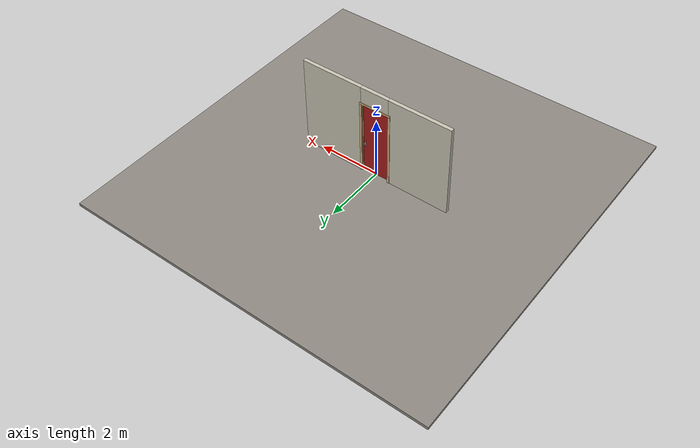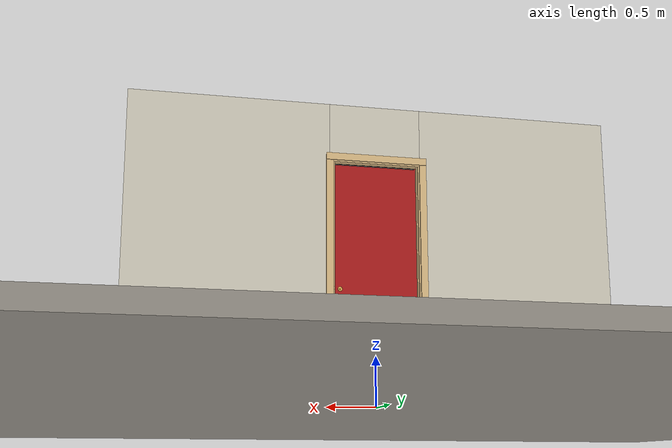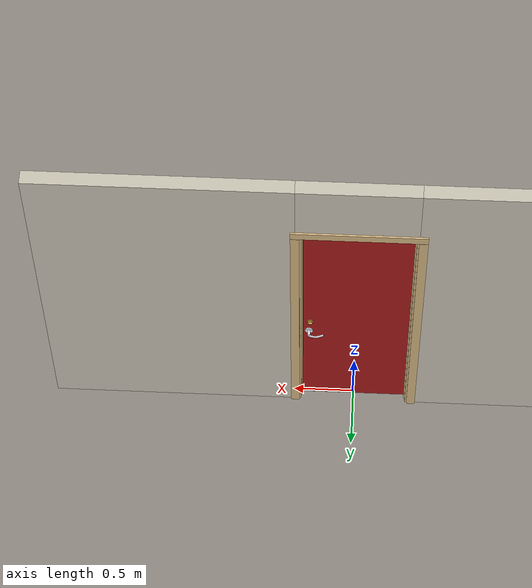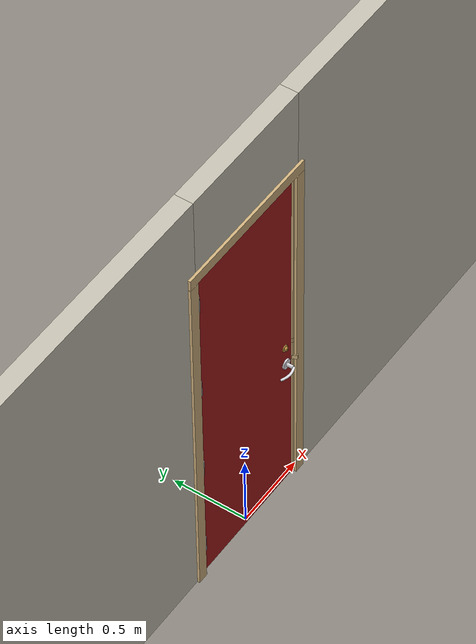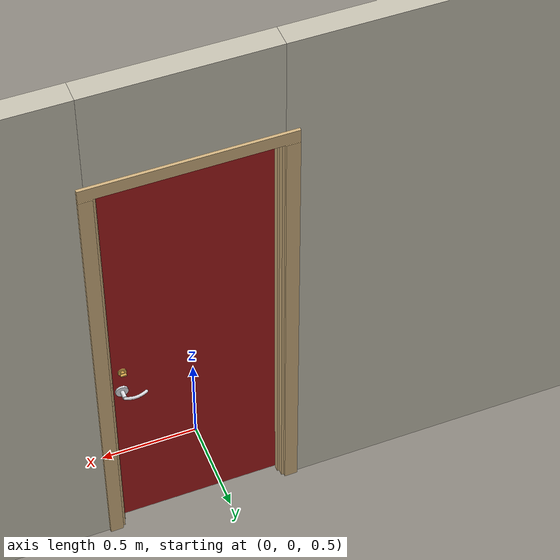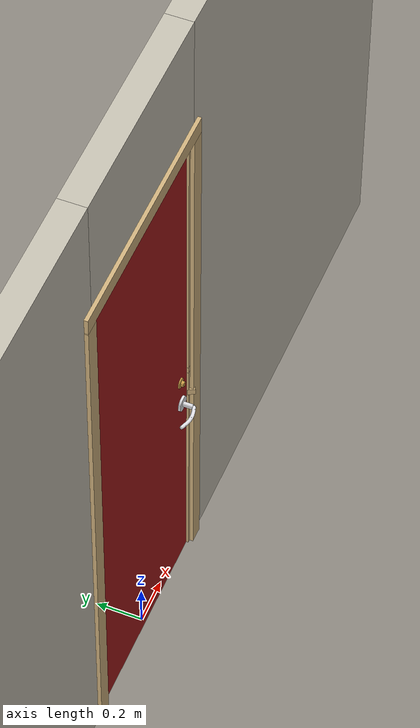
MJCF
<?xml version="1.0" ?>
<mujoco model="db0763_swing_single_full">
  <compiler angle="radian" meshdir="../../hardware" texturedir="../../textures" autolimits="true" inertiafromgeom="false"/>
  <option timestep="0.002" integrator="implicitfast" cone="elliptic" impratio="10" noslip_iterations="3">
    <flag multiccd="enable"/>
  </option>
  <size memory="16M"/>
  <default>
    <geom condim="4" solref="0.005 1" solimp="0.95 0.99 0.001"/>
    <joint solreflimit="0.005 1" solimplimit="0.95 0.99 0.001"/>
    <tendon solreflimit="0.005 1"/>
    <equality solref="0.002 1"/>
  </default>
  <visual>
    <headlight ambient="0.4 0.4 0.4" diffuse="0.7 0.7 0.7" specular="0.2 0.2 0.2"/>
    <quality shadowsize="4096"/>
    <map znear="0.01" zfar="60"/>
  </visual>
  <asset>
    <mesh name="cyl_face_e9e5036966" file="cyl_face_e9e5036966.obj"/>
    <mesh name="hinge_e22b26c0c1" file="hinge_e22b26c0c1.obj"/>
    <mesh name="hinge_jamb_e1d088f8dc" file="hinge_jamb_e1d088f8dc.obj"/>
    <mesh name="lever_748f08efca" file="lever_748f08efca.obj"/>
    <mesh name="thumbturn_eb5c9899a3" file="thumbturn_eb5c9899a3.obj"/>
    <material name="mat_floor" rgba="0.55 0.53 0.5 1" specular="0.2" shininess="0.15" reflectance="0"/>
    <material name="mat_wall" rgba="0.78 0.76 0.7 1" specular="0.2" shininess="0.1" reflectance="0"/>
    <material name="mat_leaf" rgba="0.65 0.1 0.1 1" specular="0.23" shininess="0.44" reflectance="0.02"/>
    <material name="mat_hinge" rgba="0.65 0.66 0.68 1" specular="0.74" shininess="0.5" reflectance="0.36"/>
    <material name="mat_op_chrome" rgba="0.9 0.9 0.92 1" specular="0.8" shininess="0.9" reflectance="0.4"/>
    <material name="mat_trim" rgba="0.85 0.66 0.3 1" specular="0.8" shininess="0.75" reflectance="0.4"/>
    <material name="mat_bolt" rgba="0.75 0.76 0.77 1" specular="0.8" shininess="0.65" reflectance="0.4"/>
    <material name="mat_deadbolt" rgba="0.85 0.66 0.3 1" specular="0.8" shininess="0.75" reflectance="0.4"/>
    <material name="mat_frame" rgba="0.82 0.7 0.5 1" specular="0.2" shininess="0.45" reflectance="0"/>
    <material name="mat_seal" rgba="0.1 0.1 0.1 1" specular="0.2" shininess="0.1" reflectance="0"/>
    <material name="mat_drip" rgba="0.8 0.81 0.83 1" specular="0.8" shininess="0.6" reflectance="0.4"/>
    <texture name="skybox" type="skybox" builtin="gradient" rgb1="0.6 0.7 0.85" rgb2="0.9 0.92 0.95" width="256" height="256"/>
  </asset>
  <worldbody>
    <light name="sun" pos="1.5 -2.5 4" dir="-0.3 0.5 -0.8" directional="true" diffuse="0.8 0.8 0.8" specular="0.3 0.3 0.3" castshadow="true"/>
    <light name="fill" pos="-1.5 2.5 3" dir="0.3 -0.5 -0.7" directional="true" diffuse="0.35 0.35 0.4" castshadow="false"/>
    <camera name="robot_view" pos="0 -2.894312 2.043887" xyaxes="1 0 0 0 0.26963 0.962964" fovy="52"/>
    <camera name="far_view" pos="0 2.951313 2.043887" xyaxes="-1 0 0 0 -0.26963 0.962964" fovy="52"/>
    <camera name="iso" pos="2.221337 -2.426662 2.511538" xyaxes="0.741536 0.670913 0 -0.242917 0.268487 0.932151" fovy="46"/>
    <camera name="detail_handle" pos="0.4664 -0.877 1.296" xyaxes="0.97561 0.219512 0 -0.070934 0.315262 0.94635" fovy="38"/>
    <geom name="floor" type="box" size="6 6 0.05" pos="0 0 -0.05" material="mat_floor" group="0" contype="1" conaffinity="1" friction="0.8 0.005 0.0001" density="2400"/>
    <geom name="wall_left" type="box" size="1.0225 0.0575 1.5255" pos="-1.4775 0.0285 1.5255" material="mat_wall" group="0" contype="1" conaffinity="1" friction="0.6 0.005 0.0001" density="800"/>
    <geom name="wall_right" type="box" size="1.0075 0.0575 1.5255" pos="1.4925 0.0285 1.5255" material="mat_wall" group="0" contype="1" conaffinity="1" friction="0.6 0.005 0.0001" density="800"/>
    <geom name="wall_header" type="box" size="0.47 0.0575 0.2755" pos="0.015 0.0285 2.7755" material="mat_wall" group="0" contype="1" conaffinity="1" friction="0.6 0.005 0.0001" density="800"/>
    <geom name="hinge_0_jamb" type="mesh" mesh="hinge_jamb_e1d088f8dc" pos="-0.433 -0.029 0.259" material="mat_hinge" group="1" contype="0" conaffinity="0" density="7850"/>
    <geom name="hinge_1_jamb" type="mesh" mesh="hinge_jamb_e1d088f8dc" pos="-0.433 -0.029 0.928333" material="mat_hinge" group="1" contype="0" conaffinity="0" density="7850"/>
    <geom name="hinge_2_jamb" type="mesh" mesh="hinge_jamb_e1d088f8dc" pos="-0.433 -0.029 1.597667" material="mat_hinge" group="1" contype="0" conaffinity="0" density="7850"/>
    <geom name="hinge_3_jamb" type="mesh" mesh="hinge_jamb_e1d088f8dc" pos="-0.433 -0.029 2.267" material="mat_hinge" group="1" contype="0" conaffinity="0" density="7850"/>
    <geom name="leaf_deadbolt_strike_b" type="box" size="0.0155 0.003 0.0005" pos="0.4355 0 1.1375" quat="-0.5 -0.5 0.5 0.5" material="mat_deadbolt" group="1" contype="0" conaffinity="0" density="7800"/>
    <geom name="leaf_deadbolt_strike_l" type="box" size="0.003 0.0155 0.0005" pos="0.4355 0.0125 1.156" quat="-0.5 -0.5 0.5 0.5" material="mat_deadbolt" group="1" contype="0" conaffinity="0" density="7800"/>
    <geom name="leaf_deadbolt_strike_t" type="box" size="0.0155 0.003 0.0005" pos="0.4355 0 1.1745" quat="-0.5 -0.5 0.5 0.5" material="mat_deadbolt" group="1" contype="0" conaffinity="0" density="7800"/>
    <geom name="leaf_deadbolt_strike_r" type="box" size="0.003 0.0155 0.0005" pos="0.4355 -0.0125 1.156" quat="-0.5 -0.5 0.5 0.5" material="mat_deadbolt" group="1" contype="0" conaffinity="0" density="7800"/>
    <geom name="jamb_hinge" type="box" size="0.0095 0.0575 1.2255" pos="-0.4455 0.0285 1.2255" material="mat_frame" group="0" contype="1" conaffinity="1" friction="0.6 0.005 0.0001" density="400"/>
    <geom name="strike_1016_wall_n" type="box" size="0.0245 0.03975 0.015" pos="0.4605 0.04625 1.016" material="mat_frame" group="0" contype="1" conaffinity="1" friction="0.6 0.005 0.0001" density="400"/>
    <geom name="strike_1016_wall_p" type="box" size="0.0245 0.008 0.015" pos="0.4605 -0.0145 1.016" material="mat_frame" group="0" contype="1" conaffinity="1" friction="0.6 0.005 0.0001" density="400"/>
    <geom name="strike_1016_ramp" type="box" size="0.0245 0.016771 0.015" pos="0.465413 -0.026543 1.016" quat="0.973249 0 0 0.229753" material="mat_frame" group="0" contype="1" conaffinity="1" friction="0.12 0.005 0.0001" density="400"/>
    <geom name="strike_1016_back" type="box" size="0.0155 0.0065 0.015" pos="0.4695 0 1.016" material="mat_frame" group="0" contype="1" conaffinity="1" friction="0.6 0.005 0.0001" density="400"/>
    <geom name="strike_1156_wall_n" type="box" size="0.0245 0.03825 0.0155" pos="0.4605 0.04775 1.156" material="mat_frame" group="0" contype="1" conaffinity="1" friction="0.6 0.005 0.0001" density="400"/>
    <geom name="strike_1156_wall_p" type="box" size="0.0245 0.00975 0.0155" pos="0.4605 -0.01925 1.156" material="mat_frame" group="0" contype="1" conaffinity="1" friction="0.6 0.005 0.0001" density="400"/>
    <geom name="strike_1156_back" type="box" size="0.0098 0.0095 0.0155" pos="0.4752 0 1.156" material="mat_frame" group="0" contype="1" conaffinity="1" friction="0.6 0.005 0.0001" density="400"/>
    <geom name="jamb_strike_0" type="box" size="0.0245 0.0575 0.5005" pos="0.4605 0.0285 0.5005" material="mat_frame" group="0" contype="1" conaffinity="1" friction="0.6 0.005 0.0001" density="400"/>
    <geom name="jamb_strike_1" type="box" size="0.0245 0.0575 0.05475" pos="0.4605 0.0285 1.08575" material="mat_frame" group="0" contype="1" conaffinity="1" friction="0.6 0.005 0.0001" density="400"/>
    <geom name="jamb_strike_2" type="box" size="0.0245 0.0575 0.63975" pos="0.4605 0.0285 1.81125" material="mat_frame" group="0" contype="1" conaffinity="1" friction="0.6 0.005 0.0001" density="400"/>
    <geom name="jamb_head" type="box" size="0.47 0.0575 0.0095" pos="0.015 0.0285 2.4605" material="mat_frame" group="0" contype="1" conaffinity="1" friction="0.6 0.005 0.0001" density="400"/>
    <geom name="head_stud" type="box" size="0.47 0.0575 0.015" pos="0.015 0.0285 2.485" material="mat_wall" group="0" contype="1" conaffinity="1" friction="0.6 0.005 0.0001" density="500"/>
    <geom name="stop_hinge" type="box" size="0.0055 0.016 1.2255" pos="-0.4305 0.0385 1.2255" material="mat_frame" group="0" contype="1" conaffinity="1" friction="0.6 0.005 0.0001" density="400"/>
    <geom name="stop_strike" type="box" size="0.0055 0.016 1.2255" pos="0.4305 0.0385 1.2255" material="mat_frame" group="0" contype="1" conaffinity="1" friction="0.6 0.005 0.0001" density="400"/>
    <geom name="stop_head" type="box" size="0.436 0.016 0.0055" pos="0 0.0385 2.4455" material="mat_frame" group="0" contype="1" conaffinity="1" friction="0.6 0.005 0.0001" density="400"/>
    <geom name="seal_hinge" type="box" size="0.004 0.003 1.2255" pos="-0.433 0.025 1.2255" material="mat_seal" group="1" contype="0" conaffinity="0" density="1100"/>
    <geom name="seal_strike" type="box" size="0.004 0.003 1.2255" pos="0.433 0.025 1.2255" material="mat_seal" group="1" contype="0" conaffinity="0" density="1100"/>
    <geom name="seal_head" type="box" size="0.416 0.003 0.008" pos="0 0.025 2.439" material="mat_seal" group="1" contype="0" conaffinity="0" density="1100"/>
    <geom name="casing_l_n" type="box" size="0.035 0.008 1.235" pos="-0.485 -0.037 1.2255" material="mat_frame" group="2" contype="0" conaffinity="0" density="400"/>
    <geom name="casing_r_n" type="box" size="0.035 0.008 1.235" pos="0.485 -0.037 1.2255" material="mat_frame" group="2" contype="0" conaffinity="0" density="400"/>
    <geom name="casing_h_n" type="box" size="0.52 0.008 0.035" pos="0 -0.037 2.5" material="mat_frame" group="2" contype="0" conaffinity="0" density="400"/>
    <geom name="casing_l_p" type="box" size="0.035 0.008 1.235" pos="-0.485 0.094 1.2255" material="mat_frame" group="2" contype="0" conaffinity="0" density="400"/>
    <geom name="casing_r_p" type="box" size="0.035 0.008 1.235" pos="0.485 0.094 1.2255" material="mat_frame" group="2" contype="0" conaffinity="0" density="400"/>
    <geom name="casing_h_p" type="box" size="0.52 0.008 0.035" pos="0 0.094 2.5" material="mat_frame" group="2" contype="0" conaffinity="0" density="400"/>
    <geom name="weather_drip_cap" type="box" size="0.486 0.03 0.008" pos="0 0.03 2.496" material="mat_drip" group="2" contype="0" conaffinity="0" density="2700"/>
    <geom name="weather_drip_cap_bracket" type="box" size="0.1458 0.015 0.005" pos="0 -0.0145 2.496" material="mat_drip" group="2" contype="0" conaffinity="0" density="7850"/>
    <site name="approach_point" pos="0 -1.5 0" quat="1 0 0 0" size="0.05" rgba="0.2 0.9 0.2 0.5" group="4"/>
    <site name="goal_point" pos="0 1.5 0" quat="1 0 0 0" size="0.05" rgba="0.2 0.9 0.2 0.5" group="4"/>
    <site name="door_plane_center" pos="0 0 1.2255" quat="1 0 0 0" size="0.02" rgba="0.2 0.9 0.2 0.5" group="4"/>
    <body name="leaf" pos="-0.436 0 0">
      <inertial pos="0.422236 -0.000705 1.22879" mass="29.969412" quat="0.501168 0.499583 0.500427 -0.498819" diaginertia="2.001418782 14.850522138 16.841399036"/>
      <joint name="leaf_hinge" type="hinge" axis="0 0 -1" pos="0.003 -0.029 0" limited="true" range="0 1.745329" solreflimit="0.02 1" damping="0.295361" frictionloss="1.389659" armature="0.02"/>
      <geom name="leaf_slab" type="box" size="0.432 0.022 1.219" pos="0.435 0 1.228" material="mat_leaf" group="0" contype="1" conaffinity="1" friction="0.4 0.005 0.0001" density="1"/>
      <geom name="hinge_0" type="mesh" mesh="hinge_e22b26c0c1" pos="0.003 -0.029 0.259" material="mat_hinge" group="1" contype="0" conaffinity="0" density="7850"/>
      <geom name="hinge_1" type="mesh" mesh="hinge_e22b26c0c1" pos="0.003 -0.029 0.928333" material="mat_hinge" group="1" contype="0" conaffinity="0" density="7850"/>
      <geom name="hinge_2" type="mesh" mesh="hinge_e22b26c0c1" pos="0.003 -0.029 1.597667" material="mat_hinge" group="1" contype="0" conaffinity="0" density="7850"/>
      <geom name="hinge_3" type="mesh" mesh="hinge_e22b26c0c1" pos="0.003 -0.029 2.267" material="mat_hinge" group="1" contype="0" conaffinity="0" density="7850"/>
      <geom name="leaf_latch_bolt_faceplate" type="box" size="0.0006 0.011 0.025" pos="0.8664 0 1.016" material="mat_bolt" group="1" contype="0" conaffinity="0" density="8500"/>
      <geom name="leaf_deadbolt_faceplate" type="box" size="0.0006 0.014 0.0245" pos="0.8664 0 1.156" material="mat_deadbolt" group="1" contype="0" conaffinity="0" density="8500"/>
      <geom name="leaf_deadbolt_cylinder_face" type="mesh" mesh="cyl_face_e9e5036966" pos="0.802 -0.022 1.156" quat="0.707107 0.707107 0 0" material="mat_deadbolt" group="1" contype="0" conaffinity="0" density="7100"/>
      <site name="leaf_edge_mid" pos="0.867 0 1.219" quat="1 0 0 0" size="0.02" rgba="0.2 0.9 0.2 0.5" group="4"/>
      <body name="leaf_handle" pos="0.812 0 1.016">
        <inertial pos="-0.024187 0 0" mass="0.847798" quat="0.707107 0 0 -0.707107" diaginertia="0.00118733 0.003222067 0.004272567"/>
        <joint name="leaf_handle_hinge" type="hinge" axis="0 -1 0" limited="true" range="0 0.87" damping="0.205085" frictionloss="0.04" stiffness="0.9" springref="-0.444444" armature="0.01"/>
        <geom name="leaf_handle_spindle" type="cylinder" size="0.006 0.03" pos="0 0 0" quat="0.707107 -0.707107 0 0" material="mat_op_chrome" group="1" contype="0" conaffinity="0" density="7850"/>
        <geom name="leaf_handle_lever_n" type="mesh" mesh="lever_748f08efca" pos="0 -0.022 0" quat="0.707107 0.707107 0 0" material="mat_op_chrome" group="1" contype="0" conaffinity="0" density="3000"/>
        <geom name="leaf_handle_lever_col_n" type="capsule" size="0.008 0.048" pos="-0.056 -0.077 0" quat="0.707107 0 -0.707107 0" material="mat_op_chrome" group="3" contype="1" conaffinity="1" rgba="0.8 0.3 0.3 0.25" friction="0.7 0.01 0.0001" density="3000"/>
        <geom name="leaf_handle_hub_col_n" type="cylinder" size="0.012 0.022" pos="0 -0.052 0" quat="0.707107 -0.707107 0 0" material="mat_op_chrome" group="3" contype="1" conaffinity="1" rgba="0.8 0.3 0.3 0.25" friction="0.6 0.005 0.0001" density="3000"/>
        <geom name="leaf_handle_lever_p" type="mesh" mesh="lever_748f08efca" pos="0 0.022 0" quat="-0.707107 0.707107 0 0" material="mat_op_chrome" group="1" contype="0" conaffinity="0" density="3000"/>
        <geom name="leaf_handle_lever_col_p" type="capsule" size="0.008 0.048" pos="-0.056 0.077 0" quat="0.707107 0 -0.707107 0" material="mat_op_chrome" group="3" contype="1" conaffinity="1" rgba="0.8 0.3 0.3 0.25" friction="0.7 0.01 0.0001" density="3000"/>
        <geom name="leaf_handle_hub_col_p" type="cylinder" size="0.012 0.022" pos="0 0.052 0" quat="0.707107 -0.707107 0 0" material="mat_op_chrome" group="3" contype="1" conaffinity="1" rgba="0.8 0.3 0.3 0.25" friction="0.6 0.005 0.0001" density="3000"/>
        <site name="leaf_handle_grip_n" pos="-0.0896 -0.077 0" quat="1 0 0 0" size="0.012" rgba="0.2 0.9 0.2 0.5" group="4"/>
        <site name="leaf_handle_grip_p" pos="-0.0896 0.077 0" quat="1 0 0 0" size="0.012" rgba="0.2 0.9 0.2 0.5" group="4"/>
      </body>
      <body name="leaf_latch_bolt" pos="0.867 0 1.016">
        <inertial pos="-0.008 0 0" mass="0.027149" quat="0 0 0.707107 0.707107" diaginertia="0.000000328 0.000003943 0.000003943"/>
        <joint name="leaf_latch_bolt_slide" type="slide" axis="-1 0 0" limited="true" range="0 0.014" damping="2" frictionloss="0.3" stiffness="400" springref="-0.01" armature="0.1"/>
        <geom name="leaf_latch_bolt_capsule" type="capsule" size="0.005 0.017" pos="-0.008 0 0" quat="0.707107 0 0.707107 0" material="mat_bolt" group="0" contype="1" conaffinity="1" friction="0.2 0.005 0.0001" density="8500"/>
      </body>
      <body name="leaf_deadbolt" pos="0.867 0 1.156">
        <inertial pos="-0.0277 0 0" mass="0.18836" quat="0 0 0.707107 0.707107" diaginertia="0.000013829 0.000052194 0.000057986"/>
        <joint name="leaf_deadbolt_slide" type="slide" axis="-1 0 0" limited="true" range="0 0.0254" damping="5" frictionloss="1.5" armature="0.1" ref="0.0254"/>
        <geom name="leaf_deadbolt_box" type="box" size="0.0277 0.008 0.0125" pos="-0.0277 0 0" material="mat_deadbolt" group="0" contype="1" conaffinity="1" friction="0.3 0.005 0.0001" density="8500"/>
      </body>
      <body name="leaf_deadbolt_thumbturn" pos="0.802 0.022 1.156">
        <inertial pos="0 0.012928 0" mass="0.178946" quat="0.707107 -0.000001 -0.000001 0.707107" diaginertia="0.000026045 0.000026215 0.000032438"/>
        <joint name="leaf_deadbolt_thumbturn_hinge" type="hinge" axis="0 -1 0" limited="true" range="0 1.5708" damping="0.05" frictionloss="0.35" armature="0.005" ref="1.5708"/>
        <geom name="leaf_deadbolt_thumbturn_mesh" type="mesh" mesh="thumbturn_eb5c9899a3" pos="0 0 0" quat="-0.499999 0.499999 0.500001 0.500001" material="mat_deadbolt" group="0" contype="1" conaffinity="1" friction="0.6 0.005 0.0001" density="7100"/>
        <geom name="leaf_deadbolt_thumbturn_col" type="box" size="0.006 0.012 0.016" pos="0 0.02 0" quat="0.707105 0 -0.707108 0" material="mat_deadbolt" group="3" contype="1" conaffinity="1" rgba="0.8 0.3 0.3 0.25" friction="0.6 0.005 0.0001" density="7100"/>
      </body>
    </body>
  </worldbody>
  <tendon>
    <fixed name="leaf_latch_bolt_coupling" limited="true" range="0 10">
      <joint joint="leaf_latch_bolt_slide" coef="1"/>
      <joint joint="leaf_handle_hinge" coef="-0.017722"/>
    </fixed>
  </tendon>
  <equality>
    <joint name="leaf_deadbolt_couple" joint1="leaf_deadbolt_slide" joint2="leaf_deadbolt_thumbturn_hinge" polycoef="0 0.01617 0 0 0" active="true"/>
  </equality>
  <contact>
    <exclude body1="leaf_deadbolt" body2="leaf_deadbolt_thumbturn"/>
  </contact>
  <sensor>
    <jointpos name="leaf_hinge_pos" joint="leaf_hinge"/>
    <jointvel name="leaf_hinge_vel" joint="leaf_hinge"/>
    <jointpos name="leaf_handle_hinge_pos" joint="leaf_handle_hinge"/>
    <jointvel name="leaf_handle_hinge_vel" joint="leaf_handle_hinge"/>
    <jointpos name="leaf_latch_bolt_slide_pos" joint="leaf_latch_bolt_slide"/>
    <jointvel name="leaf_latch_bolt_slide_vel" joint="leaf_latch_bolt_slide"/>
    <jointpos name="leaf_deadbolt_slide_pos" joint="leaf_deadbolt_slide"/>
    <jointvel name="leaf_deadbolt_slide_vel" joint="leaf_deadbolt_slide"/>
    <jointpos name="leaf_deadbolt_thumbturn_hinge_pos" joint="leaf_deadbolt_thumbturn_hinge"/>
    <jointvel name="leaf_deadbolt_thumbturn_hinge_vel" joint="leaf_deadbolt_thumbturn_hinge"/>
  </sensor>
</mujoco>
